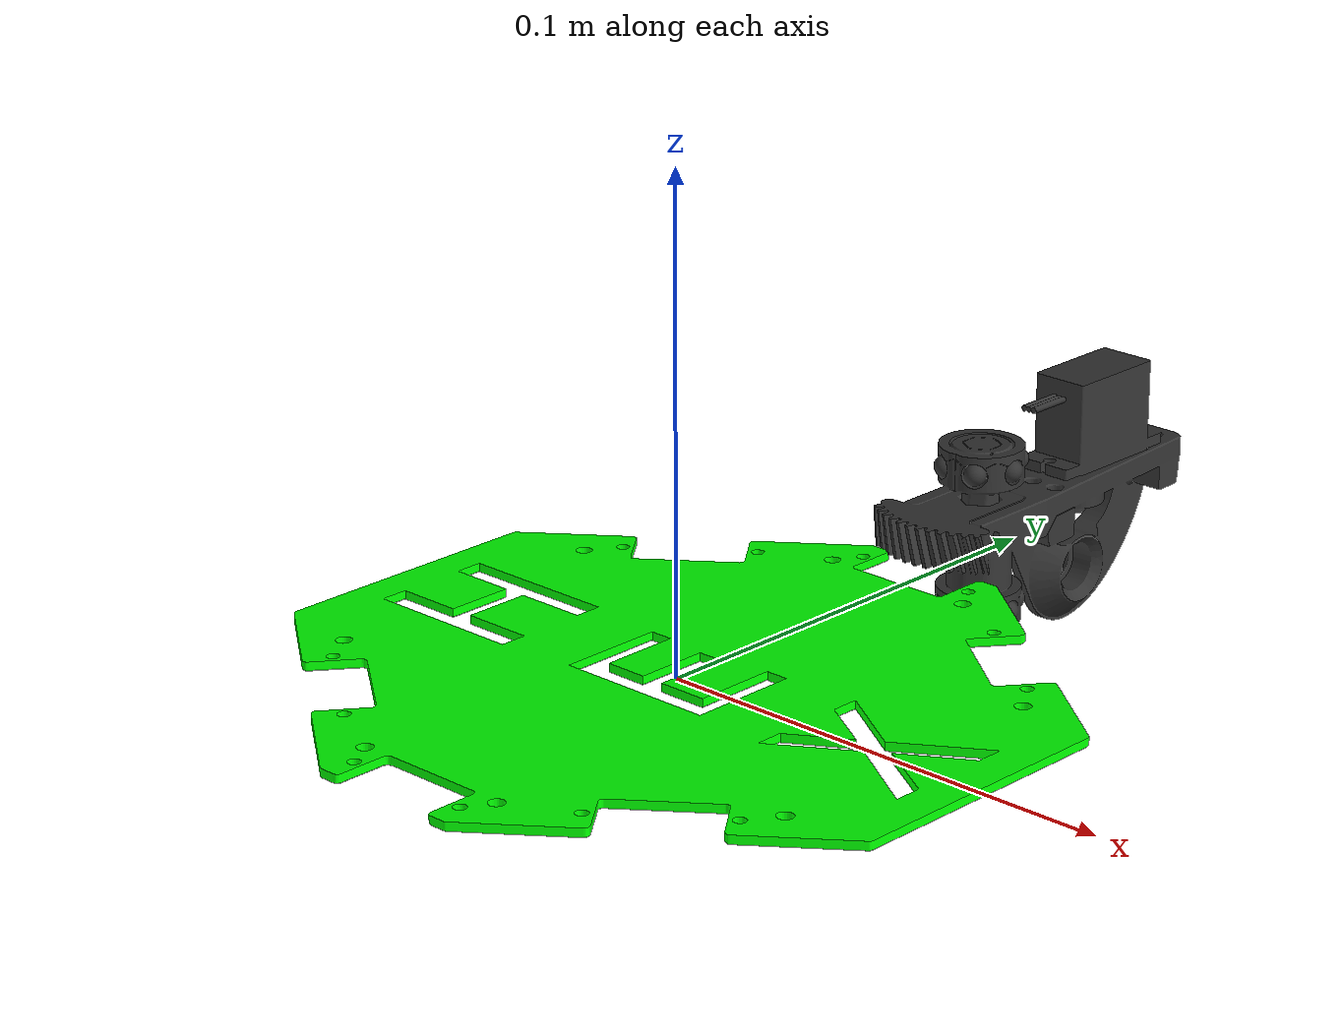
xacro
<?xml version="1.0"?>
<robot xmlns:xacro="http://www.ros.org/wiki/xacro" name="hexapod">
    <xacro:arg name="initial_positions_file" default="initial_positions.yaml" />

    <!-- Import hexapod urdf file -->
    <xacro:include filename="$(find hexapod_description)/urdf/hexapod/hexapod.urdf" />

    <!-- Import control_xacro -->
    <xacro:include filename="hexapod.ros2_control.xacro" />

    <xacro:hexapod_ros2_control name="FakeSystem" initial_positions_file="$(arg initial_positions_file)"/>

</robot>

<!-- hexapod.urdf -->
<!-- |    This document was autogenerated by xacro from hexapod.xacro                  | -->
<!-- |    EDITING THIS FILE BY HAND IS NOT RECOMMENDED                                 | -->
<robot name="hexapod">
  <!-- tak można przekazać parametr -->
  <link name="base_link">
    <visual>
      <geometry>
        <mesh filename="$(find hexapod_description)/meshes/platform.stl"/>
      </geometry>
      <material name="green">
        <color rgba="0.0 1.0 0.0 1.0"/>
      </material>
      <origin rpy="0.0 0.0 0.0" xyz="0.0 0.0 0.0"/>
    </visual>
    <collision>
      <geometry>
        <mesh filename="$(find hexapod_description)/meshes/platform.stl"/>
      </geometry>
      <origin rpy="0.0 0.0 0.0" xyz="0.0 0.0 0.0"/>
    </collision>
    <inertial>
      <origin rpy="0.0 0.0 0.0" xyz="0.0 0.0 0.0"/>
      <mass value="4.6"/>
      <inertia ixx="1.0" ixy="0.0" ixz="0.0" iyy="1.0" iyz="0.0" izz="1.0"/>
    </inertial>
  </link>
  <gazebo reference="base_link">
    <visual>
      <material>
        <ambient>0.0 0.7 0.0 1.0</ambient>
        <diffuse>0.0 0.7 0.0 1.0</diffuse>
        <specular>0.0 0.7 0.0 1.0</specular>
      </material>
    </visual>
  </gazebo>
  <link name="up_section">
    <visual>
      <origin rpy="0.0 0.0 0.0" xyz="0.0 0.0 0.0"/>
      <geometry>
        <mesh filename="$(find hexapod_description)/meshes/leg_up.stl"/>
      </geometry>
      <material name="dark_gray">
        <color rgba="0.2 0.2 0.2 1.0"/>
      </material>
    </visual>
    <collision>
      <origin rpy="0.0 0.0 0.0" xyz="0.0 0.0 0.0"/>
      <geometry>
        <mesh filename="$(find hexapod_description)/meshes/leg_up.stl"/>
      </geometry>
    </collision>
    <inertial>
      <origin rpy="0.0 0.0 0.0" xyz="0.0 0.0 0.0"/>
      <mass value="1.0"/>
      <inertia ixx="1.0" ixy="0.0" ixz="0.0" iyy="1.0" iyz="0.0" izz="1.0"/>
    </inertial>
  </link>
  <joint name="up_section_joint" type="revolute">
    <axis xyz="0.0 0.0 1.0"/>
    <parent link="base_link"/>
    <child link="up_section"/>
    <origin rpy="0.0 0.0 0.0" xyz="-0.0052386 0.097578 0.0015"/>
    <!-- ograniczenie kątów -30 do 30 stopni -->
    <limit effort="5.0" lower="-0.5236" upper="0.5236" velocity="1.0"/>
  </joint>
  <gazebo reference="up_section">
    <surface>
      <friction>
        <ode>
          <mu>1.0</mu>
          <mu2>0.0</mu2>
        </ode>
      </friction>
    </surface>
    <visual>
      <material>
        <ambient>0.2 0.2 0.2 1.0</ambient>
        <diffuse>0.2 0.2 0.2 1.0</diffuse>
        <specular>0.2 0.2 0.2 1.0</specular>
        <emissive>0.0 0.0 0.0 0.0</emissive>
      </material>
    </visual>
  </gazebo>
</robot>
